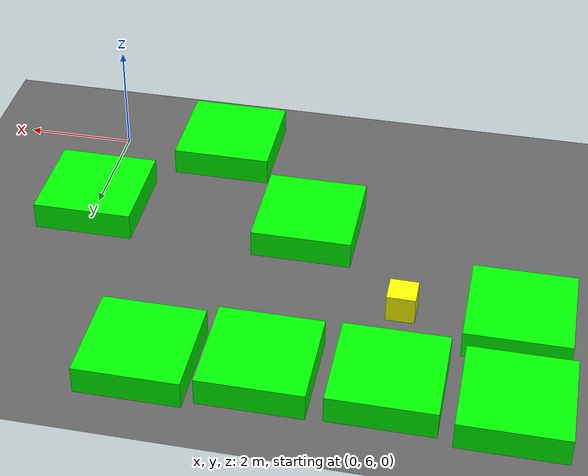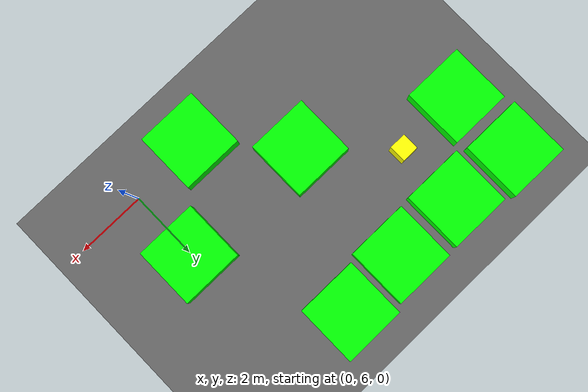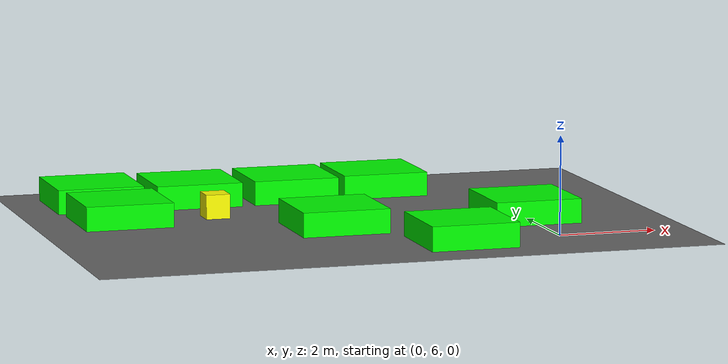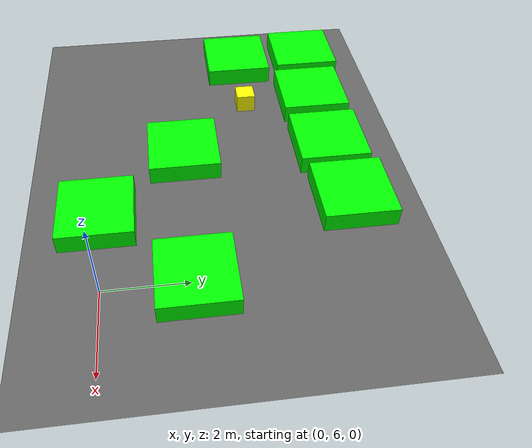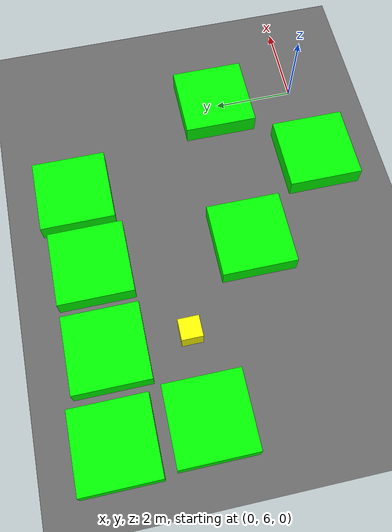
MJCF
<mujoco model="lvl5_corridor_obs10_dmid_depth3_seed49">
    <compiler angle="degree" coordinate="local" inertiafromgeom="true"/>
    <option integrator="RK4" timestep="0.01"/>

    <asset>
        <texture builtin="gradient" height="100" rgb1="0.6 0.8 1" rgb2="0 0 0" type="skybox" width="100"/>
        <texture name="floor_texture" type="2d" builtin="checker" width="100" height="100" rgb1="0 0 0" rgb2="0.8 0.8 0.8"/>
        <material name="MatPlane" reflectance="0.5" shininess="1" specular="1" texrepeat="10 10" texture="floor_texture"/>
    </asset>

    <!-- Excluding the contact between the agent and the goal, and the agent and the floor -->
    <contact>
        <exclude body1="agent" body2="goal"/>
        <exclude body1 = "agent" body2 = "floor"/>
    </contact>

    <extension>
        <plugin plugin = "mujoco.pid">
            <instance name = "pid1">
                <config key="kp" value="2"/>
                <config key="ki" value="0"/>
                <config key="kd" value="55"/>
            </instance>
        </plugin>
    </extension>

    <worldbody>
        <light cutoff="100" diffuse="1 1 1" dir="-0 0 -1.3" directional="true" exponent="1" pos="0 0 1.3" specular=".1 .1 .1"/>
        <body name="floor" pos="0 0 0">
            <geom name="floor_geom" type="plane" size="20 20 0.1" material="MatPlane"/>
        </body>

                <body name="goal" pos="0.0000 0.0000 0">
            <geom name="goal_geom" type="plane" size="0.5 0.5 1" pos="0 0 0" rgba="1 0 0 1"/>
        </body>

                <body name="agent" pos="-6.0000 10.0000 0.250">
            <joint name="j1" type="slide" axis ="1 0 0 "/>
            <joint name="j2" type="slide" axis ="0 1 0 "/>
            <geom name="agent_geom" type="box" size="0.25 0.25 0.250" rgba="1 1 0 1"/>
        </body>

        <body name="obstacle1" pos="-8.0895 12.0654 0.250">  <geom name="obstacle1_geom" type="box" size="0.9000 0.9000 0.250" rgba="0 1 0 1"/></body>
        <body name="obstacle2" pos="-6.0413 11.9190 0.250">  <geom name="obstacle2_geom" type="box" size="0.9000 0.9000 0.250" rgba="0 1 0 1"/></body>
        <body name="obstacle3" pos="-3.9620 11.9492 0.250">  <geom name="obstacle3_geom" type="box" size="0.9000 0.9000 0.250" rgba="0 1 0 1"/></body>
        <body name="obstacle4" pos="-1.9912 12.0865 0.250">  <geom name="obstacle4_geom" type="box" size="0.9000 0.9000 0.250" rgba="0 1 0 1"/></body>
        <body name="obstacle5" pos="-7.9939 9.9887 0.250">  <geom name="obstacle5_geom" type="box" size="0.9000 0.9000 0.250" rgba="0 1 0 1"/></body>
        <body name="obstacle6" pos="-4.0418 8.0950 0.250">  <geom name="obstacle6_geom" type="box" size="0.9000 0.9000 0.250" rgba="0 1 0 1"/></body>
        <body name="obstacle7" pos="-0.0027 8.0978 0.250">  <geom name="obstacle7_geom" type="box" size="0.9000 0.9000 0.250" rgba="0 1 0 1"/></body>
        <body name="obstacle8" pos="-2.0781 5.9105 0.250">  <geom name="obstacle8_geom" type="box" size="0.9000 0.9000 0.250" rgba="0 1 0 1"/></body>

    </worldbody>

    <sensor>
<!-- SENSORS -->

        <distance name="dist1" geom1="agent_geom" geom2="obstacle1_geom" cutoff="1.5"/>
        <distance name="dist2" geom1="agent_geom" geom2="obstacle2_geom" cutoff="1.5"/>
        <distance name="dist3" geom1="agent_geom" geom2="obstacle3_geom" cutoff="1.5"/>
        <distance name="dist4" geom1="agent_geom" geom2="obstacle4_geom" cutoff="1.5"/>
        <distance name="dist5" geom1="agent_geom" geom2="obstacle5_geom" cutoff="1.5"/>
        <distance name="dist6" geom1="agent_geom" geom2="obstacle6_geom" cutoff="1.5"/>
        <distance name="dist7" geom1="agent_geom" geom2="obstacle7_geom" cutoff="1.5"/>
        <distance name="dist8" geom1="agent_geom" geom2="obstacle8_geom" cutoff="1.5"/>
</sensor>

    <actuator>
        <plugin joint="j1" plugin="mujoco.pid" instance="pid1" />
        <plugin joint="j2" plugin="mujoco.pid" instance="pid1"/>
    </actuator>
</mujoco>
